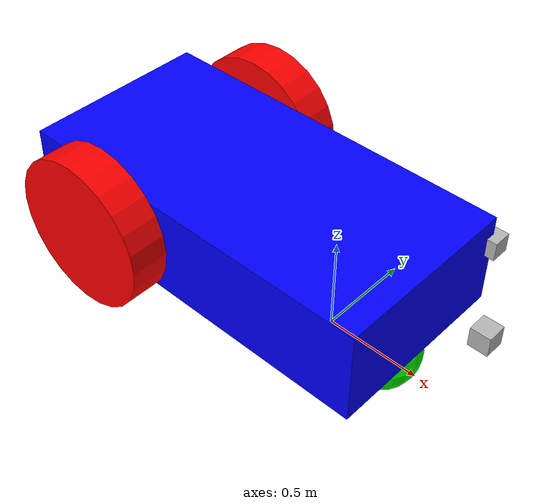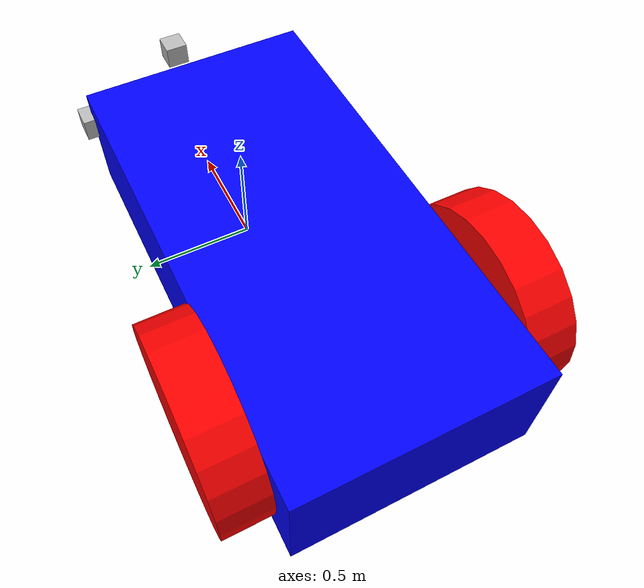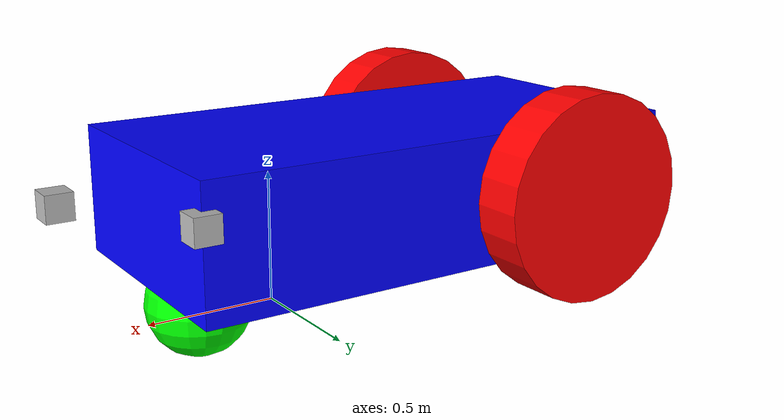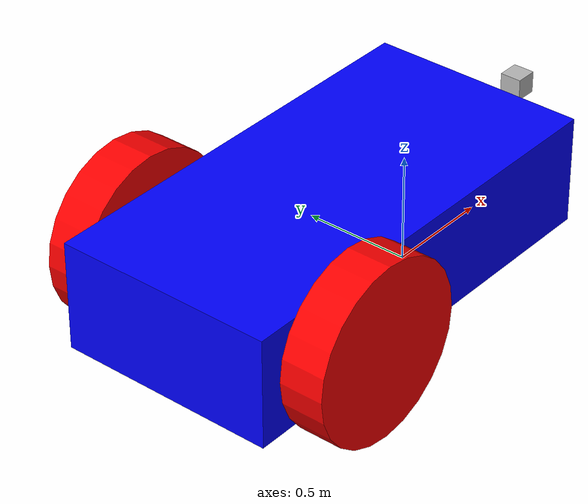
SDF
<?xml version="1.0" ?>
<sdf version="1.10">
    <!-- Defining the model that we are adding into the scene, that in this case it will be a car -->
    <!--* CAR MODEL  -->
    <model name='robot'>

        <!--* CHASSIS  -->
        <link name='chassis'>
            <pose>-0.5 0 0.4 0 0 0</pose>    <!-- its pose relative to the model -->

            <inertial> <!--inertial properties of the link mass, inertia matix-->
                <mass>1.14395</mass>
                <inertia>
                    <ixx>0.095329</ixx>
                    <ixy>0</ixy>
                    <ixz>0</ixz>
                    <iyy>0.381317</iyy>
                    <iyz>0</iyz>
                    <izz>0.476646</izz>
                </inertia>
            </inertial>

            <visual name='visual_chassis'>
                <geometry>
                    <box>
                        <size>2.0 1.0 0.5</size>
                    </box>
                </geometry>
                <!--let's add color to our link-->
                <material>
                    <ambient>0.0 0.0 1.0 1</ambient>
                    <diffuse>0.0 0.0 1.0 1</diffuse>
                    <specular>0.0 0.0 1.0 1</specular>
                </material>
            </visual>

            <collision name='collision_chassis'>
                <geometry>
                    <box>
                        <size>2.0 1.0 0.5</size>
                    </box>
                </geometry>
            </collision>
        </link>

        <!--* LEFT WHEEL  -->
        <link name='left_wheel'>
            <pose relative_to="chassis">-0.5 0.6 0 -1.5707 0 0</pose>
            <inertial>
                <mass>1</mass>
                <inertia>
                    <ixx>0.043333</ixx>
                    <ixy>0</ixy>
                    <ixz>0</ixz>
                    <iyy>0.043333</iyy>
                    <iyz>0</iyz>
                    <izz>0.08</izz>
                </inertia>
            </inertial>

            <visual name='visual_left_wheel'>
                <geometry>
                    <cylinder>
                        <radius>0.4</radius>
                        <length>0.2</length>
                    </cylinder>
                </geometry>
                <material>
                    <ambient>1.0 0.0 0.0 1</ambient>
                    <diffuse>1.0 0.0 0.0 1</diffuse>
                    <specular>1.0 0.0 0.0 1</specular>
                </material>
            </visual>
            <collision name='collision_left_wheel'>
                <geometry>
                    <cylinder>
                        <radius>0.4</radius>
                        <length>0.2</length>
                    </cylinder>
                </geometry>
            </collision>
        </link>

        <!--* LEFT WHEEL JOINT -->
        <joint name='left_wheel_joint' type='revolute'>
            <parent>chassis</parent>
            <child>left_wheel</child>
            <axis>
            <xyz>0 0 1</xyz>
            <limit>
                <lower>-1.79769e+308</lower>
                <upper>1.79769e+308</upper>
            </limit>
            </axis>
        </joint>

        <!--* RIGHT WHEEL -->
        <link name='right_wheel'>
            <pose relative_to="chassis">-0.5 -0.6 0 -1.5707 0 0</pose> <!--angles are in radian-->
            <inertial>
                <mass>1</mass>
                <inertia>
                    <ixx>0.043333</ixx>
                    <ixy>0</ixy>
                    <ixz>0</ixz>
                    <iyy>0.043333</iyy>
                    <iyz>0</iyz>
                    <izz>0.08</izz>
                </inertia>
            </inertial>
            <visual name='visual_right_wheel'>
                <geometry>
                    <cylinder>
                        <radius>0.4</radius>
                        <length>0.2</length>
                    </cylinder>
                </geometry>
                <material>
                    <ambient>1.0 0.0 0.0 1</ambient>
                    <diffuse>1.0 0.0 0.0 1</diffuse>
                    <specular>1.0 0.0 0.0 1</specular>
                </material>
            </visual>
            <collision name='collision_right_wheel'>
                <geometry>
                    <cylinder>
                        <radius>0.4</radius>
                        <length>0.2</length>
                    </cylinder>
                </geometry>
            </collision>
        </link>

        <!--* RIGHT WHEEL JOINT -->
        <joint name='right_wheel_joint' type='revolute'>
            <parent>chassis</parent>
            <child>right_wheel</child>
            <axis>
            <xyz>0 0 1</xyz>
            <limit>
                <lower>-1.79769e+308</lower>
                <upper>1.79769e+308</upper>
            </limit>
            </axis>
        </joint>

        <!--*CASTER WHEEL-->
        <link name='caster'>
            <pose relative_to="chassis">0.8 0 -0.35 0 0 0</pose>
            <inertial>
                <mass>1</mass>
                <inertia>
                    <ixx>0.016</ixx>
                    <ixy>0</ixy>
                    <ixz>0</ixz>
                    <iyy>0.016</iyy>
                    <iyz>0</iyz>
                    <izz>0.016</izz>
                </inertia>
            </inertial>
            <visual name='visual'>
                <geometry>
                    <sphere>
                        <radius>0.2</radius>
                    </sphere>
                </geometry>
                <material>
                    <ambient>0.0 1 0.0 1</ambient>
                    <diffuse>0.0 1 0.0 1</diffuse>
                    <specular>0.0 1 0.0 1</specular>
                </material>
            </visual>
            <collision name='collision'>
                <geometry>
                    <sphere>
                        <radius>0.2</radius>
                    </sphere>
                </geometry>
            </collision>
        </link>

        <!--*CASTER WHEEL JOINT-->
        <joint name='caster_wheel_joint' type='revolute'>
            <parent>chassis</parent>
            <child>caster</child>
            <axis>
            <xyz>0 0 1</xyz>
            <limit>
                <lower>-1.79769e+308</lower>
                <upper>1.79769e+308</upper>
            </limit>
            </axis>
        </joint>

        <!-- LiDAR SENSOR -->
        <!-- Different from the simulation, here we need to add a link for the sensor, and them put the sensor tag -->
        <link name="lidar_link">
            <pose>0.8 0 0.5 0 0 0</pose>
            <inertial>
            <mass>0.1</mass>
            <inertia>
                <ixx>0.000166667</ixx>
                <iyy>0.000166667</iyy>
                <izz>0.000166667</izz>
            </inertia>
            </inertial>
            <collision name="collision">
            <geometry>
                <box>
                <size>0.1 0.1 0.1</size>
                </box>
            </geometry>
            </collision>
            <visual name="visual">
            <geometry>
                <box>
                <size>0.1 0.1 0.1</size>
                </box>
            </geometry>
            </visual>
            <sensor name='gpu_lidar' type='gpu_lidar'>
            <pose>0 0 0 0 0 0</pose>
            <topic>scan</topic>
            <gz_frame_id>robot/lidar_link</gz_frame_id>
            <update_rate>10</update_rate>
            <lidar>
                <scan>
                <horizontal>
                    <samples>640</samples>
                    <resolution>1</resolution>
                    <min_angle>-1.396263</min_angle>
                    <max_angle>1.396263</max_angle>
                </horizontal>
                <vertical>
                    <samples>1</samples>
                    <resolution>1</resolution>
                    <min_angle>0.0</min_angle>
                    <max_angle>0.0</max_angle>
                </vertical>
                </scan>
                <range>
                <min>0.08</min>
                <max>10.0</max>
                <resolution>0.01</resolution>
                </range>
            </lidar>
            <visualize>true</visualize>
            </sensor>
        </link>

        <link name="camera_link">
        <pose>0.5 0.5 0.5 0 0 0</pose>

        <inertial>
            <mass>0.1</mass>
            <inertia>
            <ixx>0.000166667</ixx>
            <iyy>0.000166667</iyy>
            <izz>0.000166667</izz>
            </inertia>
        </inertial>

        <collision name="camera_collision">
            <geometry>
            <box>
                <size>0.1 0.1 0.1</size>
            </box>
            </geometry>
        </collision>

        <visual name="camera_visual">
            <geometry>
            <box>
                <size>0.1 0.1 0.1</size>
            </box>
            </geometry>
        </visual>

        <!-- Camera sensor -->
        <sensor name="camera_front" type="camera">
         <pose>0.5 0.5 0.5 0 0 0</pose>
         <always_on>1</always_on>
         <update_rate>25</update_rate>
         <camera name="camera_front">
           <horizontal_fov>1.658</horizontal_fov>
           <lens>
             <intrinsics>
               <!-- fx = fy = width / ( 2 * tan (hfov / 2 ) ) -->
               <fx>329.9</fx>
               <fy>329.9</fy>
               <!-- cx = ( width - 1 ) / 2 -->
               <cx>359.5</cx>
               <!-- cy = ( height - 1 ) / 2 -->
               <cy>539.5</cy>
               <s>0</s>
             </intrinsics>
           </lens>
           <distortion>
             <k1>0.0</k1>
             <k2>0.0</k2>
             <k3>0.0</k3>
             <p1>0.0</p1>
             <p2>0.0</p2>
             <center>0.5 0.5</center>
           </distortion>
           <image>
             <width>720</width>
             <height>1080</height>
             <format>R8G8B8</format>
           </image>
           <clip>
             <near>0.01</near>
             <far>300</far>
           </clip>
           <noise>
             <type>gaussian</type>
             <mean>0</mean>
             <stddev>0.007</stddev>
           </noise>
         </camera>
       </sensor>
        </link>

        <joint name="camera_joint" type="fixed">
            <parent>chassis</parent>
            <child>camera_link</child>
        </joint>

        <joint name='lidar_joint' type='fixed'>
            <parent>chassis</parent>
            <child>lidar_link</child>
        </joint>

        <!--* Add o plugin enable diff drive movement   -->
        <plugin
            filename="gz-sim-diff-drive-system"
            name="gz::sim::systems::DiffDrive">
            <left_joint>left_wheel_joint</left_joint>
            <right_joint>right_wheel_joint</right_joint>
            <wheel_separation>1.2</wheel_separation>
            <wheel_radius>0.4</wheel_radius>
            <odom_publish_frequency>1</odom_publish_frequency>
            <topic>cmd_vel</topic>
        </plugin>

    </model>

</sdf>
